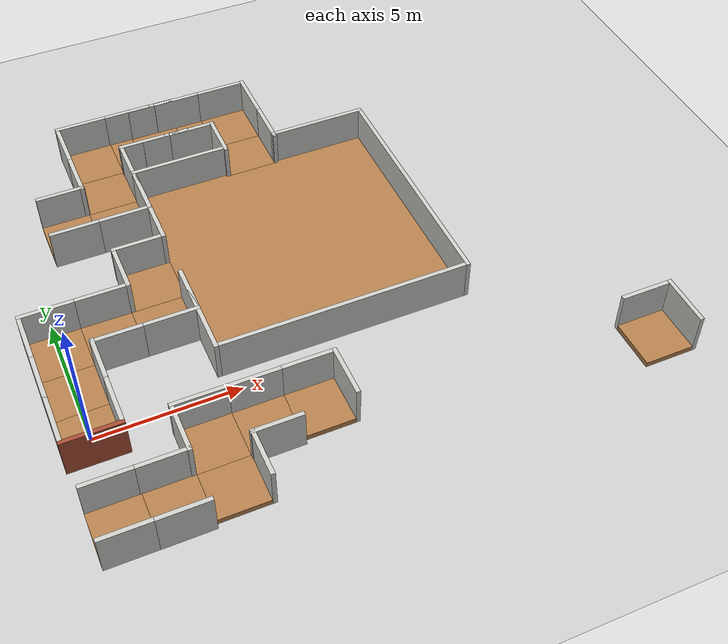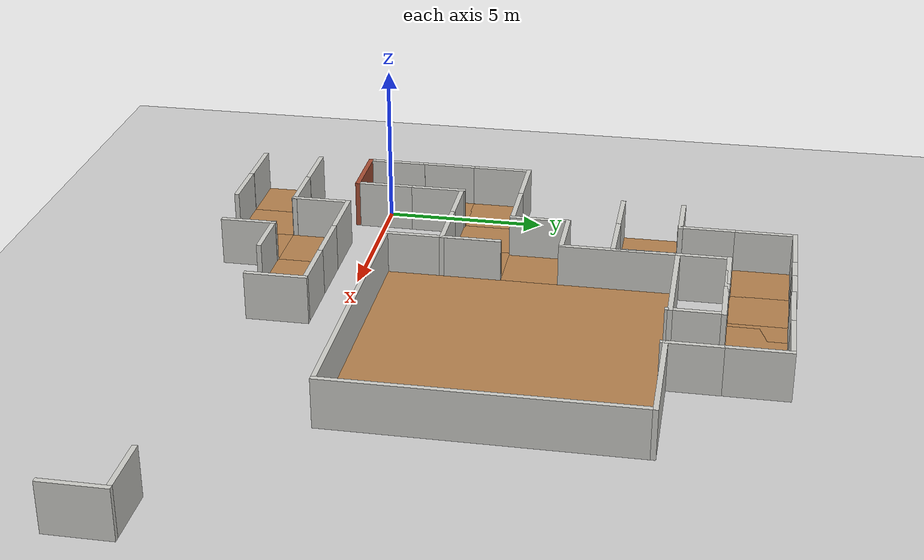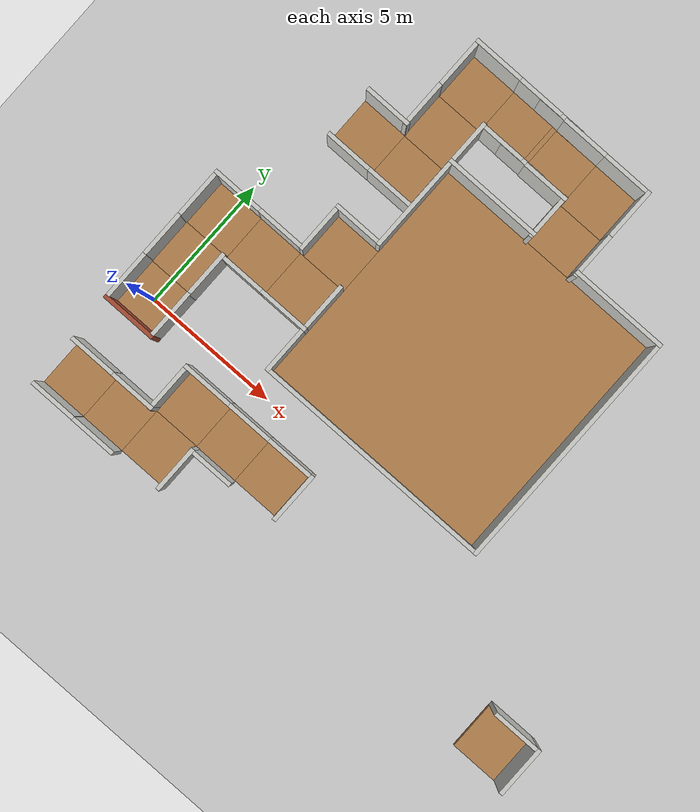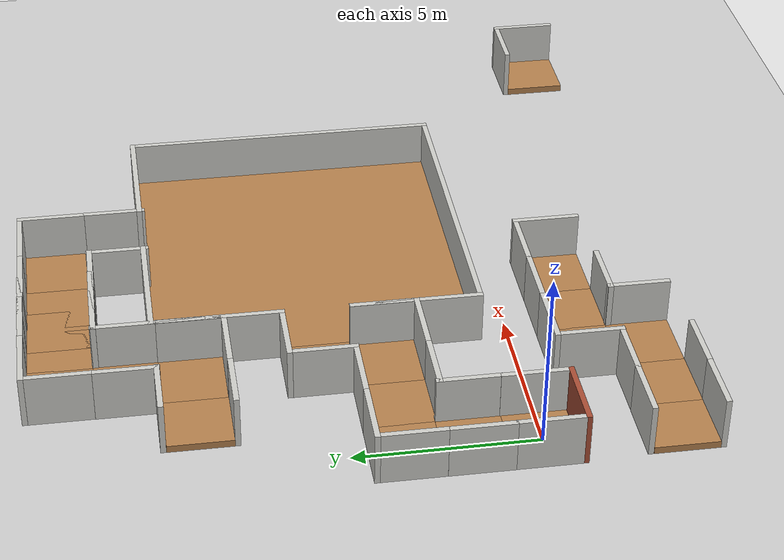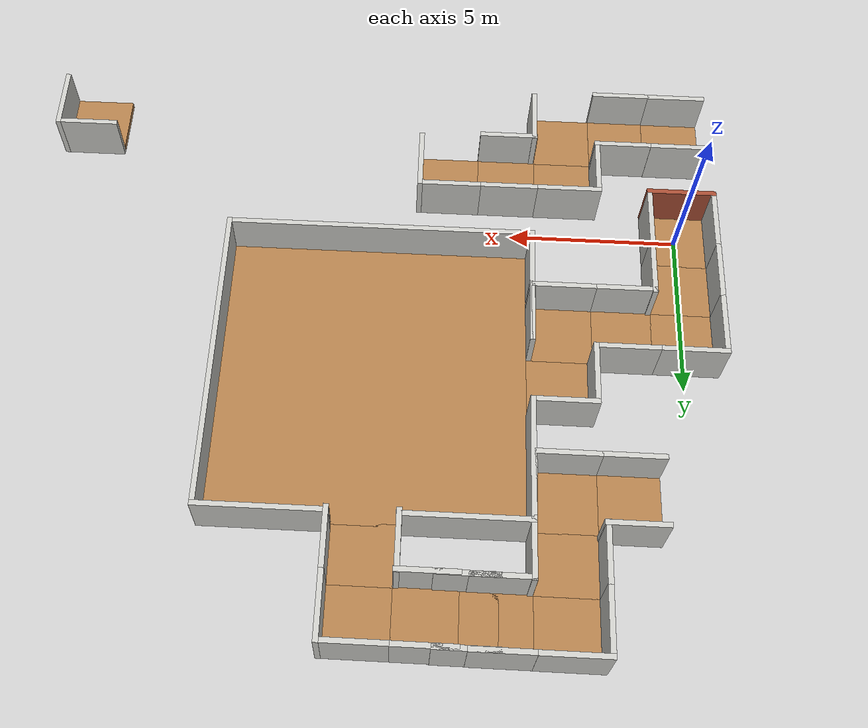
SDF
<sdf version="1.6">
 <world name="default">
  <model name="ground_plane">
   <static>1</static>
   <link name="link">
    <collision name="collision">
     <geometry><plane><normal>0 0 1</normal><size>100 100</size></plane></geometry>
     <surface><friction><ode><mu>100</mu><mu2>50</mu2></ode></friction></surface>
    </collision>
    <visual name="visual">
     <cast_shadows>0</cast_shadows>
     <geometry><plane><normal>0 0 1</normal><size>100 100</size></plane></geometry>
     <material>
      <script><uri>file://media/materials/scripts/gazebo.material</uri><name>Gazebo/Grey</name></script>
     </material>
    </visual>
   </link>
  </model>
  <model name="nerve_end">
   <pose>0 0 0 0 0 -3.14159</pose>
   <link name="Wall_0">
    <collision name="Wall_0_Collision">
     <geometry><box><size>1.76 1.75 0.2</size></box></geometry>
     <pose>0 0 0.1 0 -0 0</pose>
    </collision>
    <visual name="Wall_0_Visual">
     <pose>0 0 0.1 0 -0 0</pose>
     <geometry><box><size>1.76 1.75 0.2</size></box></geometry>
     <material>
      <script><uri>file://media/materials/scripts/gazebo.material</uri><name>Gazebo/Wood</name></script>
      <ambient>1 0.764706 0.305882 1</ambient>
     </material>
    </visual>
    <pose>-0.009 -0.064 0 0 -0 0</pose>
   </link>
   <link name="Wall_2">
    <collision name="Wall_2_Collision">
     <geometry><box><size>1.8 0.15 1.5</size></box></geometry>
     <pose>0 0 0.75 0 -0 0</pose>
    </collision>
    <visual name="Wall_2_Visual">
     <pose>0 0 0.75 0 -0 0</pose>
     <geometry><box><size>1.8 0.15 1.5</size></box></geometry>
     <material>
      <script><uri>file://media/materials/scripts/gazebo.material</uri><name>Gazebo/CeilingTiled</name></script>
      <ambient>1 0.764706 0.305882 1</ambient>
     </material>
    </visual>
    <pose>-0.95 -0.065 0 0 0 -1.5708</pose>
   </link>
   <link name="Wall_4">
    <collision name="Wall_4_Collision">
     <geometry><box><size>1.8 0.15 1.5</size></box></geometry>
     <pose>0 0 0.75 0 -0 0</pose>
    </collision>
    <visual name="Wall_4_Visual">
     <pose>0 0 0.75 0 -0 0</pose>
     <geometry><box><size>1.8 0.15 1.5</size></box></geometry>
     <material>
      <script><uri>file://media/materials/scripts/gazebo.material</uri><name>Gazebo/CeilingTiled</name></script>
      <ambient>1 0.764706 0.305882 1</ambient>
     </material>
    </visual>
    <pose>0.95 -0.065 0 0 0 -1.5708</pose>
   </link>
   <link name="Wall_6">
    <collision name="Wall_6_Collision">
     <geometry><box><size>2.05 0.15 1.5</size></box></geometry>
     <pose>0 0 0.75 0 -0 0</pose>
    </collision>
    <visual name="Wall_6_Visual">
     <pose>0 0 0.75 0 -0 0</pose>
     <geometry><box><size>2.05 0.15 1.5</size></box></geometry>
     <material>
      <script><uri>file://media/materials/scripts/gazebo.material</uri><name>Gazebo/Bricks</name></script>
      <ambient>0.996078 0.47451 0.0196078 1</ambient>
     </material>
    </visual>
    <pose>0 0.89 0 0 -0 0</pose>
   </link>
   <static>1</static>
  </model>
  <model name="nerve_straight_clone">
   <pose>-0.046085 -3.55478 0 0 0 -1.5708</pose>
   <link name="Wall_0">
    <collision name="Wall_0_Collision">
     <geometry><box><size>1.76 1.75 0.2</size></box></geometry>
     <pose>0 0 0.1 0 -0 0</pose>
    </collision>
    <visual name="Wall_0_Visual">
     <pose>0 0 0.1 0 -0 0</pose>
     <geometry><box><size>1.76 1.75 0.2</size></box></geometry>
     <material>
      <script><uri>file://media/materials/scripts/gazebo.material</uri><name>Gazebo/Wood</name></script>
      <ambient>1 0.764706 0.305882 1</ambient>
     </material>
    </visual>
    <pose>0.005 -0.002 0 0 -0 3.14159</pose>
   </link>
   <link name="Wall_2">
    <collision name="Wall_2_Collision">
     <geometry><box><size>1.75 0.15 1.5</size></box></geometry>
     <pose>0 0 0.75 0 -0 0</pose>
    </collision>
    <visual name="Wall_2_Visual">
     <pose>0 0 0.75 0 -0 0</pose>
     <geometry><box><size>1.75 0.15 1.5</size></box></geometry>
     <material>
      <script><uri>file://media/materials/scripts/gazebo.material</uri><name>Gazebo/CeilingTiled</name></script>
      <ambient>1 0.764706 0.305882 1</ambient>
     </material>
    </visual>
    <pose>-0.955 0.002 0 0 0 -1.5708</pose>
   </link>
   <link name="Wall_4">
    <collision name="Wall_4_Collision">
     <geometry><box><size>1.75 0.15 1.5</size></box></geometry>
     <pose>0 0 0.75 0 -0 0</pose>
    </collision>
    <visual name="Wall_4_Visual">
     <pose>0 0 0.75 0 -0 0</pose>
     <geometry><box><size>1.75 0.15 1.5</size></box></geometry>
     <material>
      <script><uri>file://media/materials/scripts/gazebo.material</uri><name>Gazebo/CeilingTiled</name></script>
      <ambient>1 0.764706 0.305882 1</ambient>
     </material>
    </visual>
    <pose>0.955 0.002 0 0 0 -1.5708</pose>
   </link>
   <static>1</static>
  </model>
  <model name="nerve_straight_clone_0_clone_clone">
   <pose>0.002128 1.78513 0 0 -0 3.14159</pose>
   <link name="Wall_0">
    <collision name="Wall_0_Collision">
     <geometry><box><size>1.76 1.75 0.2</size></box></geometry>
     <pose>0 0 0.1 0 -0 0</pose>
    </collision>
    <visual name="Wall_0_Visual">
     <pose>0 0 0.1 0 -0 0</pose>
     <geometry><box><size>1.76 1.75 0.2</size></box></geometry>
     <material>
      <script><uri>file://media/materials/scripts/gazebo.material</uri><name>Gazebo/Wood</name></script>
      <ambient>1 0.764706 0.305882 1</ambient>
     </material>
    </visual>
    <pose>0.005 -0.002 0 0 -0 3.14159</pose>
   </link>
   <link name="Wall_2">
    <collision name="Wall_2_Collision">
     <geometry><box><size>1.75 0.15 1.5</size></box></geometry>
     <pose>0 0 0.75 0 -0 0</pose>
    </collision>
    <visual name="Wall_2_Visual">
     <pose>0 0 0.75 0 -0 0</pose>
     <geometry><box><size>1.75 0.15 1.5</size></box></geometry>
     <material>
      <script><uri>file://media/materials/scripts/gazebo.material</uri><name>Gazebo/CeilingTiled</name></script>
      <ambient>1 0.764706 0.305882 1</ambient>
     </material>
    </visual>
    <pose>-0.955 0.002 0 0 0 -1.5708</pose>
   </link>
   <link name="Wall_4">
    <collision name="Wall_4_Collision">
     <geometry><box><size>1.75 0.15 1.5</size></box></geometry>
     <pose>0 0 0.75 0 -0 0</pose>
    </collision>
    <visual name="Wall_4_Visual">
     <pose>0 0 0.75 0 -0 0</pose>
     <geometry><box><size>1.75 0.15 1.5</size></box></geometry>
     <material>
      <script><uri>file://media/materials/scripts/gazebo.material</uri><name>Gazebo/CeilingTiled</name></script>
      <ambient>1 0.764706 0.305882 1</ambient>
     </material>
    </visual>
    <pose>0.955 0.002 0 0 0 -1.5708</pose>
   </link>
   <static>1</static>
  </model>
  <model name="nerve_corner">
   <pose>-0.067403 3.5803 0 0 -0 0</pose>
   <link name="Wall_0">
    <collision name="Wall_0_Collision">
     <geometry><box><size>1.76 1.75 0.2</size></box></geometry>
     <pose>0 0 0.1 0 -0 0</pose>
    </collision>
    <visual name="Wall_0_Visual">
     <pose>0 0 0.1 0 -0 0</pose>
     <geometry><box><size>1.76 1.75 0.2</size></box></geometry>
     <material>
      <script><uri>file://media/materials/scripts/gazebo.material</uri><name>Gazebo/Wood</name></script>
      <ambient>1 0.764706 0.305882 1</ambient>
     </material>
    </visual>
    <pose>0.077507 -0.077007 0 0 -0 3.14159</pose>
   </link>
   <link name="Wall_2">
    <collision name="Wall_2_Collision">
     <geometry><box><size>1.75 0.15 1.5</size></box></geometry>
     <pose>0 0 0.75 0 -0 0</pose>
    </collision>
    <visual name="Wall_2_Visual">
     <pose>0 0 0.75 0 -0 0</pose>
     <geometry><box><size>1.75 0.15 1.5</size></box></geometry>
     <material>
      <script><uri>file://media/materials/scripts/gazebo.material</uri><name>Gazebo/CeilingTiled</name></script>
      <ambient>1 0.764706 0.305882 1</ambient>
     </material>
    </visual>
    <pose>-0.882493 -0.073007 0 0 0 -1.5708</pose>
   </link>
   <link name="Wall_4">
    <collision name="Wall_4_Collision">
     <geometry><box><size>1.91042 0.15 1.5</size></box></geometry>
     <pose>0 0 0.75 0 -0 0</pose>
    </collision>
    <visual name="Wall_4_Visual">
     <pose>0 0 0.75 0 -0 0</pose>
     <geometry><box><size>1.91042 0.15 1.5</size></box></geometry>
     <material>
      <script><uri>file://media/materials/scripts/gazebo.material</uri><name>Gazebo/CeilingTiled</name></script>
      <ambient>1 0.764706 0.305882 1</ambient>
     </material>
    </visual>
    <pose>-0.002284 0.876825 0 0 -0 3.1414</pose>
   </link>
   <static>1</static>
  </model>
  <model name="nerve_straight_clone_0_clone_0">
   <pose>1.75611 3.50291 0 0 0 -1.5708</pose>
   <link name="Wall_0">
    <collision name="Wall_0_Collision">
     <geometry><box><size>1.76 1.75 0.2</size></box></geometry>
     <pose>0 0 0.1 0 -0 0</pose>
    </collision>
    <visual name="Wall_0_Visual">
     <pose>0 0 0.1 0 -0 0</pose>
     <geometry><box><size>1.76 1.75 0.2</size></box></geometry>
     <material>
      <script><uri>file://media/materials/scripts/gazebo.material</uri><name>Gazebo/Wood</name></script>
      <ambient>1 0.764706 0.305882 1</ambient>
     </material>
    </visual>
    <pose>0.005 -0.002 0 0 -0 3.14159</pose>
   </link>
   <link name="Wall_2">
    <collision name="Wall_2_Collision">
     <geometry><box><size>1.75 0.15 1.5</size></box></geometry>
     <pose>0 0 0.75 0 -0 0</pose>
    </collision>
    <visual name="Wall_2_Visual">
     <pose>0 0 0.75 0 -0 0</pose>
     <geometry><box><size>1.75 0.15 1.5</size></box></geometry>
     <material>
      <script><uri>file://media/materials/scripts/gazebo.material</uri><name>Gazebo/CeilingTiled</name></script>
      <ambient>1 0.764706 0.305882 1</ambient>
     </material>
    </visual>
    <pose>-0.955 0.002 0 0 0 -1.5708</pose>
   </link>
   <link name="Wall_4">
    <collision name="Wall_4_Collision">
     <geometry><box><size>1.75 0.15 1.5</size></box></geometry>
     <pose>0 0 0.75 0 -0 0</pose>
    </collision>
    <visual name="Wall_4_Visual">
     <pose>0 0 0.75 0 -0 0</pose>
     <geometry><box><size>1.75 0.15 1.5</size></box></geometry>
     <material>
      <script><uri>file://media/materials/scripts/gazebo.material</uri><name>Gazebo/CeilingTiled</name></script>
      <ambient>1 0.764706 0.305882 1</ambient>
     </material>
    </visual>
    <pose>0.955 0.002 0 0 0 -1.5708</pose>
   </link>
   <static>1</static>
  </model>
  <model name="nerve_corner_clone">
   <pose>3.58423 3.42479 0 0 0 -3.14159</pose>
   <link name="Wall_0">
    <collision name="Wall_0_Collision">
     <geometry><box><size>1.76 1.75 0.2</size></box></geometry>
     <pose>0 0 0.1 0 -0 0</pose>
    </collision>
    <visual name="Wall_0_Visual">
     <pose>0 0 0.1 0 -0 0</pose>
     <geometry><box><size>1.76 1.75 0.2</size></box></geometry>
     <material>
      <script><uri>file://media/materials/scripts/gazebo.material</uri><name>Gazebo/Wood</name></script>
      <ambient>1 0.764706 0.305882 1</ambient>
     </material>
    </visual>
    <pose>0.077507 -0.077007 0 0 -0 3.14159</pose>
   </link>
   <link name="Wall_2">
    <collision name="Wall_2_Collision">
     <geometry><box><size>1.75 0.15 1.5</size></box></geometry>
     <pose>0 0 0.75 0 -0 0</pose>
    </collision>
    <visual name="Wall_2_Visual">
     <pose>0 0 0.75 0 -0 0</pose>
     <geometry><box><size>1.75 0.15 1.5</size></box></geometry>
     <material>
      <script><uri>file://media/materials/scripts/gazebo.material</uri><name>Gazebo/CeilingTiled</name></script>
      <ambient>1 0.764706 0.305882 1</ambient>
     </material>
    </visual>
    <pose>-0.882493 -0.073007 0 0 0 -1.5708</pose>
   </link>
   <link name="Wall_4">
    <collision name="Wall_4_Collision">
     <geometry><box><size>1.91042 0.15 1.5</size></box></geometry>
     <pose>0 0 0.75 0 -0 0</pose>
    </collision>
    <visual name="Wall_4_Visual">
     <pose>0 0 0.75 0 -0 0</pose>
     <geometry><box><size>1.91042 0.15 1.5</size></box></geometry>
     <material>
      <script><uri>file://media/materials/scripts/gazebo.material</uri><name>Gazebo/CeilingTiled</name></script>
      <ambient>1 0.764706 0.305882 1</ambient>
     </material>
    </visual>
    <pose>-0.002284 0.876825 0 0 -0 3.1414</pose>
   </link>
   <static>1</static>
  </model>
  <model name="nerve_straight_clone_0_clone_0_clone">
   <pose>1.7644 8.71443 0 0 0 -1.5708</pose>
   <link name="Wall_0">
    <collision name="Wall_0_Collision">
     <geometry><box><size>1.76 1.75 0.2</size></box></geometry>
     <pose>0 0 0.1 0 -0 0</pose>
    </collision>
    <visual name="Wall_0_Visual">
     <pose>0 0 0.1 0 -0 0</pose>
     <geometry><box><size>1.76 1.75 0.2</size></box></geometry>
     <material>
      <script><uri>file://media/materials/scripts/gazebo.material</uri><name>Gazebo/Wood</name></script>
      <ambient>1 0.764706 0.305882 1</ambient>
     </material>
    </visual>
    <pose>0.005 -0.002 0 0 -0 3.14159</pose>
   </link>
   <link name="Wall_2">
    <collision name="Wall_2_Collision">
     <geometry><box><size>1.75 0.15 1.5</size></box></geometry>
     <pose>0 0 0.75 0 -0 0</pose>
    </collision>
    <visual name="Wall_2_Visual">
     <pose>0 0 0.75 0 -0 0</pose>
     <geometry><box><size>1.75 0.15 1.5</size></box></geometry>
     <material>
      <script><uri>file://media/materials/scripts/gazebo.material</uri><name>Gazebo/CeilingTiled</name></script>
      <ambient>1 0.764706 0.305882 1</ambient>
     </material>
    </visual>
    <pose>-0.955 0.002 0 0 0 -1.5708</pose>
   </link>
   <link name="Wall_4">
    <collision name="Wall_4_Collision">
     <geometry><box><size>1.75 0.15 1.5</size></box></geometry>
     <pose>0 0 0.75 0 -0 0</pose>
    </collision>
    <visual name="Wall_4_Visual">
     <pose>0 0 0.75 0 -0 0</pose>
     <geometry><box><size>1.75 0.15 1.5</size></box></geometry>
     <material>
      <script><uri>file://media/materials/scripts/gazebo.material</uri><name>Gazebo/CeilingTiled</name></script>
      <ambient>1 0.764706 0.305882 1</ambient>
     </material>
    </visual>
    <pose>0.955 0.002 0 0 0 -1.5708</pose>
   </link>
   <static>1</static>
  </model>
  <model name="nerve_straight_clone_clone">
   <pose>1.65819 -3.56106 0 0 0 -1.5708</pose>
   <link name="Wall_0">
    <collision name="Wall_0_Collision">
     <geometry><box><size>1.76 1.75 0.2</size></box></geometry>
     <pose>0 0 0.1 0 -0 0</pose>
    </collision>
    <visual name="Wall_0_Visual">
     <pose>0 0 0.1 0 -0 0</pose>
     <geometry><box><size>1.76 1.75 0.2</size></box></geometry>
     <material>
      <script><uri>file://media/materials/scripts/gazebo.material</uri><name>Gazebo/Wood</name></script>
      <ambient>1 0.764706 0.305882 1</ambient>
     </material>
    </visual>
    <pose>0.005 -0.002 0 0 -0 3.14159</pose>
   </link>
   <link name="Wall_2">
    <collision name="Wall_2_Collision">
     <geometry><box><size>1.75 0.15 1.5</size></box></geometry>
     <pose>0 0 0.75 0 -0 0</pose>
    </collision>
    <visual name="Wall_2_Visual">
     <pose>0 0 0.75 0 -0 0</pose>
     <geometry><box><size>1.75 0.15 1.5</size></box></geometry>
     <material>
      <script><uri>file://media/materials/scripts/gazebo.material</uri><name>Gazebo/CeilingTiled</name></script>
      <ambient>1 0.764706 0.305882 1</ambient>
     </material>
    </visual>
    <pose>-0.955 0.002 0 0 0 -1.5708</pose>
   </link>
   <link name="Wall_4">
    <collision name="Wall_4_Collision">
     <geometry><box><size>1.75 0.15 1.5</size></box></geometry>
     <pose>0 0 0.75 0 -0 0</pose>
    </collision>
    <visual name="Wall_4_Visual">
     <pose>0 0 0.75 0 -0 0</pose>
     <geometry><box><size>1.75 0.15 1.5</size></box></geometry>
     <material>
      <script><uri>file://media/materials/scripts/gazebo.material</uri><name>Gazebo/CeilingTiled</name></script>
      <ambient>1 0.764706 0.305882 1</ambient>
     </material>
    </visual>
    <pose>0.955 0.002 0 0 0 -1.5708</pose>
   </link>
   <static>1</static>
  </model>
  <model name="nerve_onewall_clone_clone">
   <pose>3.48323 -3.56667 0 0 0 -3.14159</pose>
   <link name="Wall_0">
    <collision name="Wall_0_Collision">
     <geometry><box><size>1.76 1.75 0.2</size></box></geometry>
     <pose>0 0 0.1 0 -0 0</pose>
    </collision>
    <visual name="Wall_0_Visual">
     <pose>0 0 0.1 0 -0 0</pose>
     <geometry><box><size>1.76 1.75 0.2</size></box></geometry>
     <material>
      <script><uri>file://media/materials/scripts/gazebo.material</uri><name>Gazebo/Wood</name></script>
      <ambient>1 0.764706 0.305882 1</ambient>
     </material>
    </visual>
    <pose>0.0775 -0.002 0 0 -0 3.14159</pose>
   </link>
   <link name="Wall_2">
    <collision name="Wall_2_Collision">
     <geometry><box><size>1.75 0.15 1.5</size></box></geometry>
     <pose>0 0 0.75 0 -0 0</pose>
    </collision>
    <visual name="Wall_2_Visual">
     <pose>0 0 0.75 0 -0 0</pose>
     <geometry><box><size>1.75 0.15 1.5</size></box></geometry>
     <material>
      <script><uri>file://media/materials/scripts/gazebo.material</uri><name>Gazebo/CeilingTiled</name></script>
      <ambient>1 0.764706 0.305882 1</ambient>
     </material>
    </visual>
    <pose>-0.8825 0.002 0 0 0 -1.5708</pose>
   </link>
   <static>1</static>
  </model>
  <model name="nerve_corner_clone_clone_clone_clone_clone">
   <pose>3.33735 -1.74493 0 0 -0 4e-06</pose>
   <link name="Wall_0">
    <collision name="Wall_0_Collision">
     <geometry><box><size>1.76 1.75 0.2</size></box></geometry>
     <pose>0 0 0.1 0 -0 0</pose>
    </collision>
    <visual name="Wall_0_Visual">
     <pose>0 0 0.1 0 -0 0</pose>
     <geometry><box><size>1.76 1.75 0.2</size></box></geometry>
     <material>
      <script><uri>file://media/materials/scripts/gazebo.material</uri><name>Gazebo/Wood</name></script>
      <ambient>1 0.764706 0.305882 1</ambient>
     </material>
    </visual>
    <pose>0.077507 -0.077007 0 0 -0 3.14159</pose>
   </link>
   <link name="Wall_2">
    <collision name="Wall_2_Collision">
     <geometry><box><size>1.75 0.15 1.5</size></box></geometry>
     <pose>0 0 0.75 0 -0 0</pose>
    </collision>
    <visual name="Wall_2_Visual">
     <pose>0 0 0.75 0 -0 0</pose>
     <geometry><box><size>1.75 0.15 1.5</size></box></geometry>
     <material>
      <script><uri>file://media/materials/scripts/gazebo.material</uri><name>Gazebo/CeilingTiled</name></script>
      <ambient>1 0.764706 0.305882 1</ambient>
     </material>
    </visual>
    <pose>-0.882493 -0.073007 0 0 0 -1.5708</pose>
   </link>
   <link name="Wall_4">
    <collision name="Wall_4_Collision">
     <geometry><box><size>1.91042 0.15 1.5</size></box></geometry>
     <pose>0 0 0.75 0 -0 0</pose>
    </collision>
    <visual name="Wall_4_Visual">
     <pose>0 0 0.75 0 -0 0</pose>
     <geometry><box><size>1.91042 0.15 1.5</size></box></geometry>
     <material>
      <script><uri>file://media/materials/scripts/gazebo.material</uri><name>Gazebo/CeilingTiled</name></script>
      <ambient>1 0.764706 0.305882 1</ambient>
     </material>
    </visual>
    <pose>-0.002284 0.876825 0 0 -0 3.1414</pose>
   </link>
   <static>1</static>
  </model>
  <model name="nerve_corner_clone_clone_clone_clone_clone_0">
   <pose>6.94042 -1.74971 0 0 0 -1.57079</pose>
   <link name="Wall_0">
    <collision name="Wall_0_Collision">
     <geometry><box><size>1.76 1.75 0.2</size></box></geometry>
     <pose>0 0 0.1 0 -0 0</pose>
    </collision>
    <visual name="Wall_0_Visual">
     <pose>0 0 0.1 0 -0 0</pose>
     <geometry><box><size>1.76 1.75 0.2</size></box></geometry>
     <material>
      <script><uri>file://media/materials/scripts/gazebo.material</uri><name>Gazebo/Wood</name></script>
      <ambient>1 0.764706 0.305882 1</ambient>
     </material>
    </visual>
    <pose>0.077507 -0.077007 0 0 -0 3.14159</pose>
   </link>
   <link name="Wall_2">
    <collision name="Wall_2_Collision">
     <geometry><box><size>1.75 0.15 1.5</size></box></geometry>
     <pose>0 0 0.75 0 -0 0</pose>
    </collision>
    <visual name="Wall_2_Visual">
     <pose>0 0 0.75 0 -0 0</pose>
     <geometry><box><size>1.75 0.15 1.5</size></box></geometry>
     <material>
      <script><uri>file://media/materials/scripts/gazebo.material</uri><name>Gazebo/CeilingTiled</name></script>
      <ambient>1 0.764706 0.305882 1</ambient>
     </material>
    </visual>
    <pose>-0.882493 -0.073007 0 0 0 -1.5708</pose>
   </link>
   <link name="Wall_4">
    <collision name="Wall_4_Collision">
     <geometry><box><size>1.91042 0.15 1.5</size></box></geometry>
     <pose>0 0 0.75 0 -0 0</pose>
    </collision>
    <visual name="Wall_4_Visual">
     <pose>0 0 0.75 0 -0 0</pose>
     <geometry><box><size>1.91042 0.15 1.5</size></box></geometry>
     <material>
      <script><uri>file://media/materials/scripts/gazebo.material</uri><name>Gazebo/CeilingTiled</name></script>
      <ambient>1 0.764706 0.305882 1</ambient>
     </material>
    </visual>
    <pose>-0.002284 0.876825 0 0 -0 3.1414</pose>
   </link>
   <static>1</static>
  </model>
  <model name="nerve_straight_clone_0_clone_0_clone_1_clone_0">
   <pose>5.14668 -1.82337 0 0 0 -1.5708</pose>
   <link name="Wall_0">
    <collision name="Wall_0_Collision">
     <geometry><box><size>1.76 1.75 0.2</size></box></geometry>
     <pose>0 0 0.1 0 -0 0</pose>
    </collision>
    <visual name="Wall_0_Visual">
     <pose>0 0 0.1 0 -0 0</pose>
     <geometry><box><size>1.76 1.75 0.2</size></box></geometry>
     <material>
      <script><uri>file://media/materials/scripts/gazebo.material</uri><name>Gazebo/Wood</name></script>
      <ambient>1 0.764706 0.305882 1</ambient>
     </material>
    </visual>
    <pose>0.005 -0.002 0 0 -0 3.14159</pose>
   </link>
   <link name="Wall_2">
    <collision name="Wall_2_Collision">
     <geometry><box><size>1.75 0.15 1.5</size></box></geometry>
     <pose>0 0 0.75 0 -0 0</pose>
    </collision>
    <visual name="Wall_2_Visual">
     <pose>0 0 0.75 0 -0 0</pose>
     <geometry><box><size>1.75 0.15 1.5</size></box></geometry>
     <material>
      <script><uri>file://media/materials/scripts/gazebo.material</uri><name>Gazebo/CeilingTiled</name></script>
      <ambient>1 0.764706 0.305882 1</ambient>
     </material>
    </visual>
    <pose>-0.955 0.002 0 0 0 -1.5708</pose>
   </link>
   <link name="Wall_4">
    <collision name="Wall_4_Collision">
     <geometry><box><size>1.75 0.15 1.5</size></box></geometry>
     <pose>0 0 0.75 0 -0 0</pose>
    </collision>
    <visual name="Wall_4_Visual">
     <pose>0 0 0.75 0 -0 0</pose>
     <geometry><box><size>1.75 0.15 1.5</size></box></geometry>
     <material>
      <script><uri>file://media/materials/scripts/gazebo.material</uri><name>Gazebo/CeilingTiled</name></script>
      <ambient>1 0.764706 0.305882 1</ambient>
     </material>
    </visual>
    <pose>0.955 0.002 0 0 0 -1.5708</pose>
   </link>
   <static>1</static>
  </model>
  <model name="nerve_corner_clone_clone_1_clone_clone">
   <pose>18.2036 -3.50554 0 0 0 -1.57079</pose>
   <link name="Wall_0">
    <collision name="Wall_0_Collision">
     <geometry><box><size>1.76 1.75 0.2</size></box></geometry>
     <pose>0 0 0.1 0 -0 0</pose>
    </collision>
    <visual name="Wall_0_Visual">
     <pose>0 0 0.1 0 -0 0</pose>
     <geometry><box><size>1.76 1.75 0.2</size></box></geometry>
     <material>
      <script><uri>file://media/materials/scripts/gazebo.material</uri><name>Gazebo/Wood</name></script>
      <ambient>1 0.764706 0.305882 1</ambient>
     </material>
    </visual>
    <pose>0.077507 -0.077007 0 0 -0 3.14159</pose>
   </link>
   <link name="Wall_2">
    <collision name="Wall_2_Collision">
     <geometry><box><size>1.75 0.15 1.5</size></box></geometry>
     <pose>0 0 0.75 0 -0 0</pose>
    </collision>
    <visual name="Wall_2_Visual">
     <pose>0 0 0.75 0 -0 0</pose>
     <geometry><box><size>1.75 0.15 1.5</size></box></geometry>
     <material>
      <script><uri>file://media/materials/scripts/gazebo.material</uri><name>Gazebo/CeilingTiled</name></script>
      <ambient>1 0.764706 0.305882 1</ambient>
     </material>
    </visual>
    <pose>-0.882493 -0.073007 0 0 0 -1.5708</pose>
   </link>
   <link name="Wall_4">
    <collision name="Wall_4_Collision">
     <geometry><box><size>1.91042 0.15 1.5</size></box></geometry>
     <pose>0 0 0.75 0 -0 0</pose>
    </collision>
    <visual name="Wall_4_Visual">
     <pose>0 0 0.75 0 -0 0</pose>
     <geometry><box><size>1.91042 0.15 1.5</size></box></geometry>
     <material>
      <script><uri>file://media/materials/scripts/gazebo.material</uri><name>Gazebo/CeilingTiled</name></script>
      <ambient>1 0.764706 0.305882 1</ambient>
     </material>
    </visual>
    <pose>-0.002284 0.876825 0 0 -0 3.1414</pose>
   </link>
   <static>1</static>
  </model>
  <model name="nerve_room_5x5ARENA_right_clone">
   <pose>8.91265 5.25697 0 0 0 -1.57</pose>
   <link name="Wall_11">
    <collision name="Wall_11_Collision">
     <geometry><box><size>8.75 0.15 1.5</size></box></geometry>
     <pose>0 0 0.75 0 -0 0</pose>
    </collision>
    <visual name="Wall_11_Visual">
     <pose>0 0 0.75 0 -0 0</pose>
     <geometry><box><size>8.75 0.15 1.5</size></box></geometry>
     <material>
      <script><uri>file://media/materials/scripts/gazebo.material</uri><name>Gazebo/CeilingTiled</name></script>
      <ambient>1 0.764706 0.305882 1</ambient>
     </material>
    </visual>
    <pose>4.44912 -0.000431 0 0 0 -1.5708</pose>
   </link>
   <link name="Wall_13">
    <collision name="Wall_13_Collision">
     <geometry><box><size>3.65 0.15 1.5</size></box></geometry>
     <pose>0 0 0.75 0 -0 0</pose>
    </collision>
    <visual name="Wall_13_Visual">
     <pose>0 0 0.75 0 -0 0</pose>
     <geometry><box><size>3.65 0.15 1.5</size></box></geometry>
     <material>
      <script><uri>file://media/materials/scripts/gazebo.material</uri><name>Gazebo/CeilingTiled</name></script>
      <ambient>1 0.764706 0.305882 1</ambient>
     </material>
    </visual>
    <pose>-4.44961 2.70076 0 0 0 -1.5708</pose>
   </link>
   <link name="Wall_15">
    <collision name="Wall_15_Collision">
     <geometry><box><size>3.65 0.15 1.5</size></box></geometry>
     <pose>0 0 0.75 0 -0 0</pose>
    </collision>
    <visual name="Wall_15_Visual">
     <pose>0 0 0.75 0 -0 0</pose>
     <geometry><box><size>3.65 0.15 1.5</size></box></geometry>
     <material>
      <script><uri>file://media/materials/scripts/gazebo.material</uri><name>Gazebo/CeilingTiled</name></script>
      <ambient>1 0.764706 0.305882 1</ambient>
     </material>
    </visual>
    <pose>2.69961 -4.45076 0 0 -0 0</pose>
   </link>
   <link name="Wall_17">
    <collision name="Wall_17_Collision">
     <geometry><box><size>8.90028 0.15 1.5</size></box></geometry>
     <pose>0 0 0.75 0 -0 0</pose>
    </collision>
    <visual name="Wall_17_Visual">
     <pose>0 0 0.75 0 -0 0</pose>
     <geometry><box><size>8.90028 0.15 1.5</size></box></geometry>
     <material>
      <script><uri>file://media/materials/scripts/gazebo.material</uri><name>Gazebo/CeilingTiled</name></script>
      <ambient>1 0.764706 0.305882 1</ambient>
     </material>
    </visual>
    <pose>0.074346 4.45022 0 0 0 -6.5e-05</pose>
   </link>
   <link name="Wall_21">
    <collision name="Wall_21_Collision">
     <geometry><box><size>3.5 0.15 1.5</size></box></geometry>
     <pose>0 0 0.75 0 -0 0</pose>
    </collision>
    <visual name="Wall_21_Visual">
     <pose>0 0 0.75 0 -0 0</pose>
     <geometry><box><size>3.5 0.15 1.5</size></box></geometry>
     <material>
      <script><uri>file://media/materials/scripts/gazebo.material</uri><name>Gazebo/CeilingTiled</name></script>
      <ambient>1 0.764706 0.305882 1</ambient>
     </material>
    </visual>
    <pose>-2.62383 -4.4498 0 0 -0 0</pose>
   </link>
   <link name="Wall_25">
    <collision name="Wall_25_Collision">
     <geometry><box><size>3.65 0.15 1.5</size></box></geometry>
     <pose>0 0 0.75 0 -0 0</pose>
    </collision>
    <visual name="Wall_25_Visual">
     <pose>0 0 0.75 0 -0 0</pose>
     <geometry><box><size>3.65 0.15 1.5</size></box></geometry>
     <material>
      <script><uri>file://media/materials/scripts/gazebo.material</uri><name>Gazebo/CeilingTiled</name></script>
      <ambient>1 0.764706 0.305882 1</ambient>
     </material>
    </visual>
    <pose>-4.44941 -2.70044 0 0 0 -1.5708</pose>
   </link>
   <link name="Wall_6">
    <collision name="Wall_6_Collision">
     <geometry><box><size>8.76 8.75 0.2</size></box></geometry>
     <pose>0 0 0.1 0 -0 0</pose>
    </collision>
    <visual name="Wall_6_Visual">
     <pose>0 0 0.1 0 -0 0</pose>
     <geometry><box><size>8.76 8.75 0.2</size></box></geometry>
     <material>
      <script><uri>file://media/materials/scripts/gazebo.material</uri><name>Gazebo/Wood</name></script>
      <ambient>1 0.764706 0.305882 1</ambient>
     </material>
    </visual>
    <pose>0.000485 -0.004173 0 0 -0 1.5708</pose>
   </link>
   <static>1</static>
  </model>
  <model name="nerve_corner_clone_0">
   <pose>3.5797 5.3278 0 0 -0 0</pose>
   <link name="Wall_0">
    <collision name="Wall_0_Collision">
     <geometry><box><size>1.76 1.75 0.2</size></box></geometry>
     <pose>0 0 0.1 0 -0 0</pose>
    </collision>
    <visual name="Wall_0_Visual">
     <pose>0 0 0.1 0 -0 0</pose>
     <geometry><box><size>1.76 1.75 0.2</size></box></geometry>
     <material>
      <script><uri>file://media/materials/scripts/gazebo.material</uri><name>Gazebo/Wood</name></script>
      <ambient>1 0.764706 0.305882 1</ambient>
     </material>
    </visual>
    <pose>0.077507 -0.077007 0 0 -0 3.14159</pose>
   </link>
   <link name="Wall_2">
    <collision name="Wall_2_Collision">
     <geometry><box><size>1.75 0.15 1.5</size></box></geometry>
     <pose>0 0 0.75 0 -0 0</pose>
    </collision>
    <visual name="Wall_2_Visual">
     <pose>0 0 0.75 0 -0 0</pose>
     <geometry><box><size>1.75 0.15 1.5</size></box></geometry>
     <material>
      <script><uri>file://media/materials/scripts/gazebo.material</uri><name>Gazebo/CeilingTiled</name></script>
      <ambient>1 0.764706 0.305882 1</ambient>
     </material>
    </visual>
    <pose>-0.882493 -0.073007 0 0 0 -1.5708</pose>
   </link>
   <link name="Wall_4">
    <collision name="Wall_4_Collision">
     <geometry><box><size>1.91042 0.15 1.5</size></box></geometry>
     <pose>0 0 0.75 0 -0 0</pose>
    </collision>
    <visual name="Wall_4_Visual">
     <pose>0 0 0.75 0 -0 0</pose>
     <geometry><box><size>1.91042 0.15 1.5</size></box></geometry>
     <material>
      <script><uri>file://media/materials/scripts/gazebo.material</uri><name>Gazebo/CeilingTiled</name></script>
      <ambient>1 0.764706 0.305882 1</ambient>
     </material>
    </visual>
    <pose>-0.002284 0.876825 0 0 -0 3.1414</pose>
   </link>
   <static>1</static>
  </model>
  <model name="nerve_straight_clone_0_clone_0_clone_clone">
   <pose>3.49978 10.4549 0 0 0 -4e-06</pose>
   <link name="Wall_0">
    <collision name="Wall_0_Collision">
     <geometry><box><size>1.76 1.75 0.2</size></box></geometry>
     <pose>0 0 0.1 0 -0 0</pose>
    </collision>
    <visual name="Wall_0_Visual">
     <pose>0 0 0.1 0 -0 0</pose>
     <geometry><box><size>1.76 1.75 0.2</size></box></geometry>
     <material>
      <script><uri>file://media/materials/scripts/gazebo.material</uri><name>Gazebo/Wood</name></script>
      <ambient>1 0.764706 0.305882 1</ambient>
     </material>
    </visual>
    <pose>0.005 -0.002 0 0 -0 3.14159</pose>
   </link>
   <link name="Wall_2">
    <collision name="Wall_2_Collision">
     <geometry><box><size>1.75 0.15 1.5</size></box></geometry>
     <pose>0 0 0.75 0 -0 0</pose>
    </collision>
    <visual name="Wall_2_Visual">
     <pose>0 0 0.75 0 -0 0</pose>
     <geometry><box><size>1.75 0.15 1.5</size></box></geometry>
     <material>
      <script><uri>file://media/materials/scripts/gazebo.material</uri><name>Gazebo/CeilingTiled</name></script>
      <ambient>1 0.764706 0.305882 1</ambient>
     </material>
    </visual>
    <pose>-0.955 0.002 0 0 0 -1.5708</pose>
   </link>
   <link name="Wall_4">
    <collision name="Wall_4_Collision">
     <geometry><box><size>1.75 0.15 1.5</size></box></geometry>
     <pose>0 0 0.75 0 -0 0</pose>
    </collision>
    <visual name="Wall_4_Visual">
     <pose>0 0 0.75 0 -0 0</pose>
     <geometry><box><size>1.75 0.15 1.5</size></box></geometry>
     <material>
      <script><uri>file://media/materials/scripts/gazebo.material</uri><name>Gazebo/CeilingTiled</name></script>
      <ambient>1 0.764706 0.305882 1</ambient>
     </material>
    </visual>
    <pose>0.955 0.002 0 0 0 -1.5708</pose>
   </link>
   <static>1</static>
  </model>
  <model name="nerve_corner_clone_0_clone_clone">
   <pose>3.56771 8.63968 0 0 -0 3.14159</pose>
   <link name="Wall_0">
    <collision name="Wall_0_Collision">
     <geometry><box><size>1.76 1.75 0.2</size></box></geometry>
     <pose>0 0 0.1 0 -0 0</pose>
    </collision>
    <visual name="Wall_0_Visual">
     <pose>0 0 0.1 0 -0 0</pose>
     <geometry><box><size>1.76 1.75 0.2</size></box></geometry>
     <material>
      <script><uri>file://media/materials/scripts/gazebo.material</uri><name>Gazebo/Wood</name></script>
      <ambient>1 0.764706 0.305882 1</ambient>
     </material>
    </visual>
    <pose>0.077507 -0.077007 0 0 -0 3.14159</pose>
   </link>
   <link name="Wall_2">
    <collision name="Wall_2_Collision">
     <geometry><box><size>1.75 0.15 1.5</size></box></geometry>
     <pose>0 0 0.75 0 -0 0</pose>
    </collision>
    <visual name="Wall_2_Visual">
     <pose>0 0 0.75 0 -0 0</pose>
     <geometry><box><size>1.75 0.15 1.5</size></box></geometry>
     <material>
      <script><uri>file://media/materials/scripts/gazebo.material</uri><name>Gazebo/CeilingTiled</name></script>
      <ambient>1 0.764706 0.305882 1</ambient>
     </material>
    </visual>
    <pose>-0.882493 -0.073007 0 0 0 -1.5708</pose>
   </link>
   <link name="Wall_4">
    <collision name="Wall_4_Collision">
     <geometry><box><size>1.91042 0.15 1.5</size></box></geometry>
     <pose>0 0 0.75 0 -0 0</pose>
    </collision>
    <visual name="Wall_4_Visual">
     <pose>0 0 0.75 0 -0 0</pose>
     <geometry><box><size>1.91042 0.15 1.5</size></box></geometry>
     <material>
      <script><uri>file://media/materials/scripts/gazebo.material</uri><name>Gazebo/CeilingTiled</name></script>
      <ambient>1 0.764706 0.305882 1</ambient>
     </material>
    </visual>
    <pose>-0.002284 0.876825 0 0 -0 3.1414</pose>
   </link>
   <static>1</static>
  </model>
  <model name="nerve_corner_clone_0_clone_clone_0">
   <pose>3.43317 12.2725 0 0 0 -4e-06</pose>
   <link name="Wall_0">
    <collision name="Wall_0_Collision">
     <geometry><box><size>1.76 1.75 0.2</size></box></geometry>
     <pose>0 0 0.1 0 -0 0</pose>
    </collision>
    <visual name="Wall_0_Visual">
     <pose>0 0 0.1 0 -0 0</pose>
     <geometry><box><size>1.76 1.75 0.2</size></box></geometry>
     <material>
      <script><uri>file://media/materials/scripts/gazebo.material</uri><name>Gazebo/Wood</name></script>
      <ambient>1 0.764706 0.305882 1</ambient>
     </material>
    </visual>
    <pose>0.077507 -0.077007 0 0 -0 3.14159</pose>
   </link>
   <link name="Wall_2">
    <collision name="Wall_2_Collision">
     <geometry><box><size>1.75 0.15 1.5</size></box></geometry>
     <pose>0 0 0.75 0 -0 0</pose>
    </collision>
    <visual name="Wall_2_Visual">
     <pose>0 0 0.75 0 -0 0</pose>
     <geometry><box><size>1.75 0.15 1.5</size></box></geometry>
     <material>
      <script><uri>file://media/materials/scripts/gazebo.material</uri><name>Gazebo/CeilingTiled</name></script>
      <ambient>1 0.764706 0.305882 1</ambient>
     </material>
    </visual>
    <pose>-0.882493 -0.073007 0 0 0 -1.5708</pose>
   </link>
   <link name="Wall_4">
    <collision name="Wall_4_Collision">
     <geometry><box><size>1.91042 0.15 1.5</size></box></geometry>
     <pose>0 0 0.75 0 -0 0</pose>
    </collision>
    <visual name="Wall_4_Visual">
     <pose>0 0 0.75 0 -0 0</pose>
     <geometry><box><size>1.91042 0.15 1.5</size></box></geometry>
     <material>
      <script><uri>file://media/materials/scripts/gazebo.material</uri><name>Gazebo/CeilingTiled</name></script>
      <ambient>1 0.764706 0.305882 1</ambient>
     </material>
    </visual>
    <pose>-0.002284 0.876825 0 0 -0 3.1414</pose>
   </link>
   <static>1</static>
  </model>
  <model name="nerve_straight_clone_0_clone_0_clone_clone_0">
   <pose>5.24117 12.19 0 0 0 -1.5708</pose>
   <link name="Wall_0">
    <collision name="Wall_0_Collision">
     <geometry><box><size>1.76 1.75 0.2</size></box></geometry>
     <pose>0 0 0.1 0 -0 0</pose>
    </collision>
    <visual name="Wall_0_Visual">
     <pose>0 0 0.1 0 -0 0</pose>
     <geometry><box><size>1.76 1.75 0.2</size></box></geometry>
     <material>
      <script><uri>file://media/materials/scripts/gazebo.material</uri><name>Gazebo/Wood</name></script>
      <ambient>1 0.764706 0.305882 1</ambient>
     </material>
    </visual>
    <pose>0.005 -0.002 0 0 -0 3.14159</pose>
   </link>
   <link name="Wall_2">
    <collision name="Wall_2_Collision">
     <geometry><box><size>1.75 0.15 1.5</size></box></geometry>
     <pose>0 0 0.75 0 -0 0</pose>
    </collision>
    <visual name="Wall_2_Visual">
     <pose>0 0 0.75 0 -0 0</pose>
     <geometry><box><size>1.75 0.15 1.5</size></box></geometry>
     <material>
      <script><uri>file://media/materials/scripts/gazebo.material</uri><name>Gazebo/CeilingTiled</name></script>
      <ambient>1 0.764706 0.305882 1</ambient>
     </material>
    </visual>
    <pose>-0.955 0.002 0 0 0 -1.5708</pose>
   </link>
   <link name="Wall_4">
    <collision name="Wall_4_Collision">
     <geometry><box><size>1.75 0.15 1.5</size></box></geometry>
     <pose>0 0 0.75 0 -0 0</pose>
    </collision>
    <visual name="Wall_4_Visual">
     <pose>0 0 0.75 0 -0 0</pose>
     <geometry><box><size>1.75 0.15 1.5</size></box></geometry>
     <material>
      <script><uri>file://media/materials/scripts/gazebo.material</uri><name>Gazebo/CeilingTiled</name></script>
      <ambient>1 0.764706 0.305882 1</ambient>
     </material>
    </visual>
    <pose>0.955 0.002 0 0 0 -1.5708</pose>
   </link>
   <static>1</static>
  </model>
  <model name="nerve_straight_clone_0_clone_0_clone_clone_0_clone">
   <pose>7.16906 12.1637 0 0 0 -1.5708</pose>
   <link name="Wall_0">
    <collision name="Wall_0_Collision">
     <geometry><box><size>1.76 1.75 0.2</size></box></geometry>
     <pose>0 0 0.1 0 -0 0</pose>
    </collision>
    <visual name="Wall_0_Visual">
     <pose>0 0 0.1 0 -0 0</pose>
     <geometry><box><size>1.76 1.75 0.2</size></box></geometry>
     <material>
      <script><uri>file://media/materials/scripts/gazebo.material</uri><name>Gazebo/Wood</name></script>
      <ambient>1 0.764706 0.305882 1</ambient>
     </material>
    </visual>
    <pose>0.005 -0.002 0 0 -0 3.14159</pose>
   </link>
   <link name="Wall_2">
    <collision name="Wall_2_Collision">
     <geometry><box><size>1.75 0.15 1.5</size></box></geometry>
     <pose>0 0 0.75 0 -0 0</pose>
    </collision>
    <visual name="Wall_2_Visual">
     <pose>0 0 0.75 0 -0 0</pose>
     <geometry><box><size>1.75 0.15 1.5</size></box></geometry>
     <material>
      <script><uri>file://media/materials/scripts/gazebo.material</uri><name>Gazebo/CeilingTiled</name></script>
      <ambient>1 0.764706 0.305882 1</ambient>
     </material>
    </visual>
    <pose>-0.955 0.002 0 0 0 -1.5708</pose>
   </link>
   <link name="Wall_4">
    <collision name="Wall_4_Collision">
     <geometry><box><size>1.75 0.15 1.5</size></box></geometry>
     <pose>0 0 0.75 0 -0 0</pose>
    </collision>
    <visual name="Wall_4_Visual">
     <pose>0 0 0.75 0 -0 0</pose>
     <geometry><box><size>1.75 0.15 1.5</size></box></geometry>
     <material>
      <script><uri>file://media/materials/scripts/gazebo.material</uri><name>Gazebo/CeilingTiled</name></script>
      <ambient>1 0.764706 0.305882 1</ambient>
     </material>
    </visual>
    <pose>0.955 0.002 0 0 0 -1.5708</pose>
   </link>
   <static>1</static>
  </model>
  <model name="nerve_corner_clone_0_clone_clone_0_clone">
   <pose>8.98251 12.2346 0 0 0 -1.5708</pose>
   <link name="Wall_0">
    <collision name="Wall_0_Collision">
     <geometry><box><size>1.76 1.75 0.2</size></box></geometry>
     <pose>0 0 0.1 0 -0 0</pose>
    </collision>
    <visual name="Wall_0_Visual">
     <pose>0 0 0.1 0 -0 0</pose>
     <geometry><box><size>1.76 1.75 0.2</size></box></geometry>
     <material>
      <script><uri>file://media/materials/scripts/gazebo.material</uri><name>Gazebo/Wood</name></script>
      <ambient>1 0.764706 0.305882 1</ambient>
     </material>
    </visual>
    <pose>0.077507 -0.077007 0 0 -0 3.14159</pose>
   </link>
   <link name="Wall_2">
    <collision name="Wall_2_Collision">
     <geometry><box><size>1.75 0.15 1.5</size></box></geometry>
     <pose>0 0 0.75 0 -0 0</pose>
    </collision>
    <visual name="Wall_2_Visual">
     <pose>0 0 0.75 0 -0 0</pose>
     <geometry><box><size>1.75 0.15 1.5</size></box></geometry>
     <material>
      <script><uri>file://media/materials/scripts/gazebo.material</uri><name>Gazebo/CeilingTiled</name></script>
      <ambient>1 0.764706 0.305882 1</ambient>
     </material>
    </visual>
    <pose>-0.882493 -0.073007 0 0 0 -1.5708</pose>
   </link>
   <link name="Wall_4">
    <collision name="Wall_4_Collision">
     <geometry><box><size>1.91042 0.15 1.5</size></box></geometry>
     <pose>0 0 0.75 0 -0 0</pose>
    </collision>
    <visual name="Wall_4_Visual">
     <pose>0 0 0.75 0 -0 0</pose>
     <geometry><box><size>1.91042 0.15 1.5</size></box></geometry>
     <material>
      <script><uri>file://media/materials/scripts/gazebo.material</uri><name>Gazebo/CeilingTiled</name></script>
      <ambient>1 0.764706 0.305882 1</ambient>
     </material>
    </visual>
    <pose>-0.002284 0.876825 0 0 -0 3.1414</pose>
   </link>
   <static>1</static>
  </model>
  <model name="nerve_straight_clone_0_clone_0_clone_clone_0_clone_clone">
   <pose>8.90752 10.4299 0 0 -0 3.14159</pose>
   <link name="Wall_0">
    <collision name="Wall_0_Collision">
     <geometry><box><size>1.76 1.75 0.2</size></box></geometry>
     <pose>0 0 0.1 0 -0 0</pose>
    </collision>
    <visual name="Wall_0_Visual">
     <pose>0 0 0.1 0 -0 0</pose>
     <geometry><box><size>1.76 1.75 0.2</size></box></geometry>
     <material>
      <script><uri>file://media/materials/scripts/gazebo.material</uri><name>Gazebo/Wood</name></script>
      <ambient>1 0.764706 0.305882 1</ambient>
     </material>
    </visual>
    <pose>0.005 -0.002 0 0 -0 3.14159</pose>
   </link>
   <link name="Wall_2">
    <collision name="Wall_2_Collision">
     <geometry><box><size>1.75 0.15 1.5</size></box></geometry>
     <pose>0 0 0.75 0 -0 0</pose>
    </collision>
    <visual name="Wall_2_Visual">
     <pose>0 0 0.75 0 -0 0</pose>
     <geometry><box><size>1.75 0.15 1.5</size></box></geometry>
     <material>
      <script><uri>file://media/materials/scripts/gazebo.material</uri><name>Gazebo/CeilingTiled</name></script>
      <ambient>1 0.764706 0.305882 1</ambient>
     </material>
    </visual>
    <pose>-0.955 0.002 0 0 0 -1.5708</pose>
   </link>
   <link name="Wall_4">
    <collision name="Wall_4_Collision">
     <geometry><box><size>1.75 0.15 1.5</size></box></geometry>
     <pose>0 0 0.75 0 -0 0</pose>
    </collision>
    <visual name="Wall_4_Visual">
     <pose>0 0 0.75 0 -0 0</pose>
     <geometry><box><size>1.75 0.15 1.5</size></box></geometry>
     <material>
      <script><uri>file://media/materials/scripts/gazebo.material</uri><name>Gazebo/CeilingTiled</name></script>
      <ambient>1 0.764706 0.305882 1</ambient>
     </material>
    </visual>
    <pose>0.955 0.002 0 0 0 -1.5708</pose>
   </link>
   <static>1</static>
  </model>
  <model name="nerve_straight_clone_0_clone_0_clone_clone_0_clone_0">
   <pose>6.14334 12.1816 0 0 0 -1.5708</pose>
   <link name="Wall_0">
    <collision name="Wall_0_Collision">
     <geometry><box><size>1.76 1.75 0.2</size></box></geometry>
     <pose>0 0 0.1 0 -0 0</pose>
    </collision>
    <visual name="Wall_0_Visual">
     <pose>0 0 0.1 0 -0 0</pose>
     <geometry><box><size>1.76 1.75 0.2</size></box></geometry>
     <material>
      <script><uri>file://media/materials/scripts/gazebo.material</uri><name>Gazebo/Wood</name></script>
      <ambient>1 0.764706 0.305882 1</ambient>
     </material>
    </visual>
    <pose>0.005 -0.002 0 0 -0 3.14159</pose>
   </link>
   <link name="Wall_2">
    <collision name="Wall_2_Collision">
     <geometry><box><size>1.75 0.15 1.5</size></box></geometry>
     <pose>0 0 0.75 0 -0 0</pose>
    </collision>
    <visual name="Wall_2_Visual">
     <pose>0 0 0.75 0 -0 0</pose>
     <geometry><box><size>1.75 0.15 1.5</size></box></geometry>
     <material>
      <script><uri>file://media/materials/scripts/gazebo.material</uri><name>Gazebo/CeilingTiled</name></script>
      <ambient>1 0.764706 0.305882 1</ambient>
     </material>
    </visual>
    <pose>-0.955 0.002 0 0 0 -1.5708</pose>
   </link>
   <link name="Wall_4">
    <collision name="Wall_4_Collision">
     <geometry><box><size>1.75 0.15 1.5</size></box></geometry>
     <pose>0 0 0.75 0 -0 0</pose>
    </collision>
    <visual name="Wall_4_Visual">
     <pose>0 0 0.75 0 -0 0</pose>
     <geometry><box><size>1.75 0.15 1.5</size></box></geometry>
     <material>
      <script><uri>file://media/materials/scripts/gazebo.material</uri><name>Gazebo/CeilingTiled</name></script>
      <ambient>1 0.764706 0.305882 1</ambient>
     </material>
    </visual>
    <pose>0.955 0.002 0 0 0 -1.5708</pose>
   </link>
   <static>1</static>
  </model>
 </world>
</sdf>
